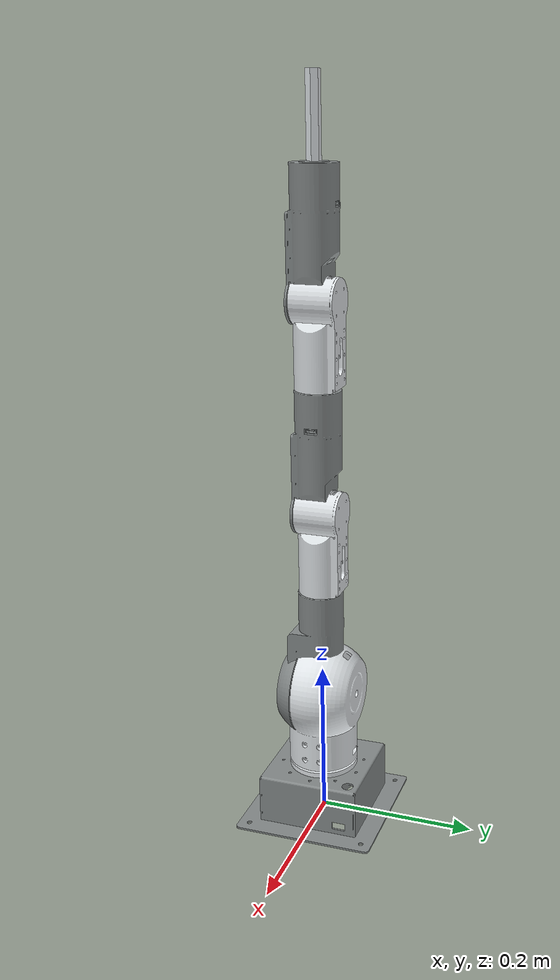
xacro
<?xml version="1.0"?>
<robot xmlns:xacro="http://www.ros.org/wiki/xacro" name="geni_craner">
    <xacro:arg name="initial_positions_file" default="initial_positions.yaml" />

    <!-- Import geni_craner urdf file -->
    <xacro:include filename="$(find geni_craner_description)/urdf/geni_craner.urdf" />

    <!-- Import control_xacro -->
    <xacro:include filename="geni_craner.ros2_control.xacro" />

    <xacro:geni_craner_ros2_control name="FakeSystem" initial_positions_file="$(arg initial_positions_file)"/>

</robot>

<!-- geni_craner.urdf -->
<robot
  name="geni_craner">

  <!-- ========== 只新增这部分，固定底座不掉落 ========== -->
  <link name="world"/>
  <joint name="world_joint" type="fixed">
    <parent link="world"/>
    <child link="base_link"/>
    <origin xyz="0 0 0" rpy="0 0 0"/>
  </joint>

  <link
    name="base_link">
    <inertial>
      <origin
        xyz="-3.055E-05 -0.00012601 0.035923"
        rpy="0 0 0" />
      <mass
        value="1.6531" />
      <inertia
        ixx="0.004393"
        ixy="-2E-05"
        ixz="2E-06"
        iyy="0.004383"
        iyz="6E-06"
        izz="0.006969" />
    </inertial>
    <visual>
      <origin
        xyz="0 0 0"
        rpy="0 0 0" />
      <geometry>
        <mesh
          filename="file:///home/leo/geni_craner_ws/src/geni_craner_description/meshes/base_link.STL" />
      </geometry>
      <material
        name="">
        <color
          rgba="0.52941 0.54902 0.54902 1" />
      </material>
    </visual>
    <collision>
      <origin
        xyz="0 0 0"
        rpy="0 0 0" />
      <geometry>
        <mesh
          filename="file:///home/leo/geni_craner_ws/src/geni_craner_description/meshes/base_link.STL" />
      </geometry>
    </collision>
  </link>
  <link
    name="link1">
    <inertial>
      <origin
        xyz="-0.00014868 0.0030229 0.077666"
        rpy="0 0 0" />
      <mass
        value="1.8898" />
      <inertia
        ixx="0.004533"
        ixy="-1E-06"
        ixz="-7E-06"
        iyy="0.005028"
        iyz="0.000159"
        izz="0.001778" />
    </inertial>
    <visual>
      <origin
        xyz="0 0 0"
        rpy="0 0 0" />
      <geometry>
        <mesh
          filename="file:///home/leo/geni_craner_ws/src/geni_craner_description/meshes/link1.STL" />
      </geometry>
      <material
        name="">
        <color
          rgba="0.89804 0.91765 0.92941 1" />
      </material>
    </visual>
    <collision>
      <origin
        xyz="0 0 0"
        rpy="0 0 0" />
      <geometry>
        <mesh
          filename="file:///home/leo/geni_craner_ws/src/geni_craner_description/meshes/link1.STL" />
      </geometry>
    </collision>
  </link>
  <joint
    name="joint1"
    type="revolute">
    <origin
      xyz="-1.4719E-05 9.8459E-05 0.0675"
      rpy="0 0 0" />
    <parent
      link="base_link" />
    <child
      link="link1" />
    <axis
      xyz="0 0 1" />
    <limit
      lower="-1.57"
      upper="1.57"
      effort="6"
      velocity="5" />
  </joint>
  <link
    name="link2">
    <inertial>
      <origin
        xyz="6.0182E-06 0.063302 -0.0076767"
        rpy="0 0 0" />
      <mass
        value="1.3279" />
      <inertia
        ixx="0.002917"
        ixy="0"
        ixz="0"
        iyy="0.000788"
        iyz="-0.000681"
        izz="0.002813" />
    </inertial>
    <visual>
      <origin
        xyz="0 0 0"
        rpy="0 0 0" />
      <geometry>
        <mesh
          filename="file:///home/leo/geni_craner_ws/src/geni_craner_description/meshes/link2.STL" />
      </geometry>
      <material
        name="">
        <color
          rgba="0.52941 0.54902 0.54902 1" />
      </material>
    </visual>
    <collision>
      <origin
        xyz="0 0 0"
        rpy="0 0 0" />
      <geometry>
        <mesh
          filename="file:///home/leo/geni_craner_ws/src/geni_craner_description/meshes/link2.STL" />
      </geometry>
    </collision>
  </link>
  <joint
    name="joint2"
    type="revolute">
    <origin
      xyz="-0.00025826 -0.02313 0.10442"
      rpy="1.5708 0 0" />
    <parent
      link="link1" />
    <child
      link="link2" />
    <axis
      xyz="0 0 1" />
    <limit
      lower="-1.57"
      upper="1.57"
      effort="20"
      velocity="5" />
  </joint>
  <link
    name="link3">
    <inertial>
      <origin
        xyz="-6.1846E-08 0.0073501 0.080573"
        rpy="0 0 0" />
      <mass
        value="0.62494" />
      <inertia
        ixx="0.001081"
        ixy="0"
        ixz="0"
        iyy="0.001023"
        iyz="-7.1E-05"
        izz="0.000313" />
    </inertial>
    <visual>
      <origin
        xyz="0 0 0"
        rpy="0 0 0" />
      <geometry>
        <mesh
          filename="file:///home/leo/geni_craner_ws/src/geni_craner_description/meshes/link3.STL" />
      </geometry>
      <material
        name="">
        <color
          rgba="0.89804 0.91765 0.92941 1" />
      </material>
    </visual>
    <collision>
      <origin
        xyz="0 0 0"
        rpy="0 0 0" />
      <geometry>
        <mesh
          filename="file:///home/leo/geni_craner_ws/src/geni_craner_description/meshes/link3.STL" />
      </geometry>
    </collision>
  </link>
  <joint
    name="joint3"
    type="revolute">
    <origin
      xyz="0 0.13825 -0.02225"
      rpy="-1.5708 0 0" />
    <parent
      link="link2" />
    <child
      link="link3" />
    <axis
      xyz="0 0 1" />
    <limit
      lower="-1.57"
      upper="1.57"
      effort="5"
      velocity="5" />
  </joint>
  <link
    name="link4">
    <inertial>
      <origin
        xyz="-9.3856E-05 0.098138 -0.018905"
        rpy="0 0 0" />
      <mass
        value="0.61987" />
      <inertia
        ixx="0.001444"
        ixy="-1E-06"
        ixz="0"
        iyy="0.000301"
        iyz="-0.00024"
        izz="0.001395" />
    </inertial>
    <visual>
      <origin
        xyz="0 0 0"
        rpy="0 0 0" />
      <geometry>
        <mesh
          filename="file:///home/leo/geni_craner_ws/src/geni_craner_description/meshes/link4.STL" />
      </geometry>
      <material
        name="">
        <color
          rgba="0.52941 0.54902 0.54902 1" />
      </material>
    </visual>
    <collision>
      <origin
        xyz="0 0 0"
        rpy="0 0 0" />
      <geometry>
        <mesh
          filename="file:///home/leo/geni_craner_ws/src/geni_craner_description/meshes/link4.STL" />
      </geometry>
    </collision>
  </link>
  <joint
    name="joint4"
    type="revolute">
    <origin
      xyz="0 -0.0255 0.1034"
      rpy="1.5708 0 0" />
    <parent
      link="link3" />
    <child
      link="link4" />
    <axis
      xyz="0 0 1" />
    <limit
      lower="-1.57"
      upper="1.57"
      effort="5"
      velocity="5" />
  </joint>
  <link
    name="link5">
    <inertial>
      <origin
        xyz="8.8967E-06 0.0065391 0.08054"
        rpy="0 0 0" />
      <mass
        value="0.62494" />
      <inertia
        ixx="0.001078"
        ixy="0"
        ixz="0"
        iyy="0.001023"
        iyz="-6.8E-05"
        izz="0.000312" />
    </inertial>
    <visual>
      <origin
        xyz="0 0 0"
        rpy="0 0 0" />
      <geometry>
        <mesh
          filename="file:///home/leo/geni_craner_ws/src/geni_craner_description/meshes/link5.STL" />
      </geometry>
      <material
        name="">
        <color
          rgba="0.89804 0.91765 0.92941 1" />
      </material>
    </visual>
    <collision>
      <origin
        xyz="0 0 0"
        rpy="0 0 0" />
      <geometry>
        <mesh
          filename="file:///home/leo/geni_craner_ws/src/geni_craner_description/meshes/link5.STL" />
      </geometry>
    </collision>
  </link>
  <joint
    name="joint5"
    type="revolute">
    <origin
      xyz="0 0.15499 -0.0255"
      rpy="-1.5708 0 0" />
    <parent
      link="link4" />
    <child
      link="link5" />
    <axis
      xyz="0 0 1" />
    <limit
      lower="-1.57"
      upper="1.57"
      effort="5"
      velocity="5" />
  </joint>
  <link
    name="link6">
    <inertial>
      <origin
        xyz="0.00033837 0.097989 -0.018866"
        rpy="0 0 0" />
      <mass
        value="0.61987" />
      <inertia
        ixx="0.001442"
        ixy="-2E-06"
        ixz="1E-06"
        iyy="0.000301"
        iyz="-0.00024"
        izz="0.001396" />
    </inertial>
    <visual>
      <origin
        xyz="0 0 0"
        rpy="0 0 0" />
      <geometry>
        <mesh
          filename="file:///home/leo/geni_craner_ws/src/geni_craner_description/meshes/link6.STL" />
      </geometry>
      <material
        name="">
        <color
          rgba="0.52941 0.54902 0.54902 1" />
      </material>
    </visual>
    <collision>
      <origin
        xyz="0 0 0"
        rpy="0 0 0" />
      <geometry>
        <mesh
          filename="file:///home/leo/geni_craner_ws/src/geni_craner_description/meshes/link6.STL" />
      </geometry>
    </collision>
  </link>
  <joint
    name="joint6"
    type="revolute">
    <origin
      xyz="0 -0.026175 0.10336"
      rpy="1.5708 0 0" />
    <parent
      link="link5" />
    <child
      link="link6" />
    <axis
      xyz="0 0.00048565 1" />
    <limit
      lower="-1.57"
      upper="1.57"
      effort="5"
      velocity="5" />
  </joint>
  <link
    name="link7_gripper">
    <inertial>
      <origin
        xyz="9.4492E-05 -3.4369E-05 0.048"
        rpy="0 0 0" />
      <mass
        value="0.14591" />
      <inertia
        ixx="0.000114"
        ixy="0"
        ixz="0"
        iyy="0.000114"
        iyz="0"
        izz="5E-06" />
    </inertial>
    <visual>
      <origin
        xyz="0 0 0"
        rpy="0 0 0" />
      <geometry>
        <mesh
          filename="file:///home/leo/geni_craner_ws/src/geni_craner_description/meshes/link7_gripper.STL" />
      </geometry>
      <material
        name="">
        <color
          rgba="0.89804 0.91765 0.92941 1" />
      </material>
    </visual>
    <collision>
      <origin
        xyz="0 0 0"
        rpy="0 0 0" />
      <geometry>
        <mesh
          filename="file:///home/leo/geni_craner_ws/src/geni_craner_description/meshes/link7_gripper.STL" />
      </geometry>
    </collision>
  </link>
  <joint
    name="joint7"
    type="continuous">
    <origin
      xyz="0.00027939 0.15484 -0.025575"
      rpy="-1.5708 0 0" />
    <parent
      link="link6" />
    <child
      link="link7_gripper" />
    <axis
      xyz="0 0.00048565 1" />
    <limit
      lower="-3.14"
      upper="3.14"
      effort="5"
      velocity="5" />
  </joint>

  <!-- 只新增 tool0，伸出 10cm，其他完全不动 -->
  <link name="tool0"/>
  <joint name="tool0_joint" type="fixed">
    <parent link="link7_gripper"/>
    <child link="tool0"/>
    <origin xyz="0 0 0.096" rpy="0 0 0"/>
  </joint>

</robot>
